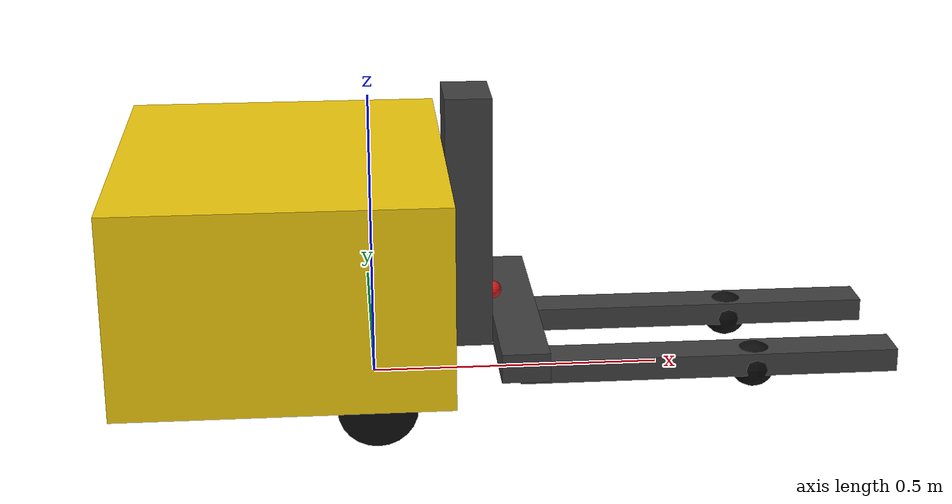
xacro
<?xml version="1.0"?>
<robot xmlns:xacro="http://www.ros.org/wiki/xacro">

    <xacro:include filename="inertial_macros.xacro"/>

    <!-- ── Arka gövde (counterweight) ── -->
    <xacro:property name="body_length" value="0.55"/>
    <xacro:property name="body_width"  value="0.66"/>
    <xacro:property name="body_height" value="0.34"/>
    <xacro:property name="body_mass"   value="15.0"/>

    <!-- ── Mast (dikey taşıma direği) ── -->
    <xacro:property name="mast_depth"  value="0.08"/>
    <xacro:property name="mast_width"  value="0.12"/>
    <xacro:property name="mast_height" value="0.44"/>
    <xacro:property name="mast_mass"   value="2.0"/>

    <!-- ── Fork taşıyıcı (carriage, mast üzerinde kayar) ── -->
    <xacro:property name="carriage_depth"  value="0.08"/>
    <xacro:property name="carriage_width"  value="0.48"/>
    <xacro:property name="carriage_height" value="0.05"/>
    <xacro:property name="carriage_mass"   value="1.5"/>

    <!-- ── Fork tine'ları (iki adet yatay maşa) ── -->
    <xacro:property name="fork_length"   value="0.65"/>
    <xacro:property name="fork_width"    value="0.07"/>
    <xacro:property name="fork_height"   value="0.04"/>
    <xacro:property name="fork_y_offset" value="0.12"/>
    <xacro:property name="fork_mass"     value="0.8"/>

    <!-- ── Arka sürüş tekerlekleri ── -->
    <xacro:property name="wheel_radius"    value="0.065"/>
    <xacro:property name="wheel_thickness" value="0.065"/>
    <xacro:property name="wheel_mass"      value="1.5"/>
    <xacro:property name="wheel_y_offset"  value="0.28"/>

    <!-- ── Ön yük tekerlekleri (fork altında, döner) ── -->
    <xacro:property name="caster_radius"    value="0.04"/>
    <xacro:property name="caster_mass"      value="0.3"/>
    <xacro:property name="caster_x_fwd"     value="0.65"/>
    <xacro:property name="caster_y_offset"  value="0.12"/>

    <xacro:property name="chassis_x_offset" value="-0.15"/>

    <!-- Renkler -->
    <material name="forklift_yellow"><color rgba="0.95 0.80 0.05 1"/></material>
    <material name="dark_gray">      <color rgba="0.25 0.25 0.25 1"/></material>
    <material name="black">          <color rgba="0.05 0.05 0.05 1"/></material>
    <material name="white">          <color rgba="0.92 0.92 0.92 1"/></material>
    <material name="red">            <color rgba="0.85 0.10 0.10 1"/></material>
    <material name="blue">           <color rgba="0.15 0.25 0.85 1"/></material>

    <!-- ================================================================
         BASE LINK  –  zemin, arka tekerlek aksı merkezi
    ================================================================ -->
    <link name="base_link"/>

    <joint name="base_footprint_joint" type="fixed">
        <parent link="base_link"/>
        <child  link="base_footprint"/>
        <origin xyz="0 0 0" rpy="0 0 0"/>
    </joint>
    <link name="base_footprint"/>

    <joint name="chassis_joint" type="fixed">
        <parent link="base_link"/>
        <child  link="chassis"/>
        <!-- x: gövde arka tekerlek aksına göre hafif öne kayık → CoM ±0 seviyesinde tutulur
             z: wheel_radius + body_height/2 → gövde alt yüzü zemin üstünde (tekerlek üstünde) -->
        <origin xyz="${chassis_x_offset} 0 ${wheel_radius + body_height/2}" rpy="0 0 0"/>
    </joint>
    <link name="chassis">
        <visual>
            <geometry>
                <box size="${body_length} ${body_width} ${body_height}"/>
            </geometry>
            <material name="forklift_yellow"/>
        </visual>
        <collision>
            <geometry>
                <box size="${body_length} ${body_width} ${body_height}"/>
            </geometry>
        </collision>
        <xacro:inertial_box mass="${body_mass}"
                            x="${body_length}" y="${body_width}" z="${body_height}">
            <origin xyz="0 0 0" rpy="0 0 0"/>
        </xacro:inertial_box>
    </link>
    <gazebo reference="chassis"><material>Gazebo/Yellow</material></gazebo>

    <joint name="mast_joint" type="fixed">
        <parent link="chassis"/>
        <child  link="mast"/>
        <origin xyz="${body_length/2 + mast_depth/2} 0 ${mast_height/2 - body_height/2}"
                rpy="0 0 0"/>
    </joint>
    <link name="mast">
        <visual>
            <geometry>
                <box size="${mast_depth} ${mast_width} ${mast_height}"/>
            </geometry>
            <material name="dark_gray"/>
        </visual>
        <collision>
            <geometry>
                <box size="${mast_depth} ${mast_width} ${mast_height}"/>
            </geometry>
        </collision>
        <xacro:inertial_box mass="${mast_mass}"
                            x="${mast_depth}" y="${mast_width}" z="${mast_height}">
            <origin xyz="0 0 0" rpy="0 0 0"/>
        </xacro:inertial_box>
    </link>
    <gazebo reference="mast"><material>Gazebo/DarkGray</material></gazebo>

    <joint name="fork_carriage_joint" type="prismatic">
        <parent link="mast"/>
        <child  link="fork_carriage"/>
        <origin xyz="${mast_depth/2 + carriage_depth/2}
                     0
                     ${-mast_height/2 + carriage_height/2 + 0.005}"
                rpy="0 0 0"/>
        <axis xyz="0 0 1"/>
        <limit lower="0.0" upper="0.30" effort="500" velocity="0.3"/>
        <!-- friction=0 (Gazebo ODE friction güvenilmez); kontrolcü gravity compensation yapar -->
        <dynamics damping="200.0" friction="0.0"/>
    </joint>
    <link name="fork_carriage">
        <visual>
            <geometry>
                <box size="${carriage_depth} ${carriage_width} ${carriage_height}"/>
            </geometry>
            <material name="dark_gray"/>
        </visual>
        <collision>
            <geometry>
                <box size="${carriage_depth} ${carriage_width} ${carriage_height}"/>
            </geometry>
        </collision>
        <xacro:inertial_box mass="${carriage_mass}"
                            x="${carriage_depth}" y="${carriage_width}" z="${carriage_height}">
            <origin xyz="0 0 0" rpy="0 0 0"/>
        </xacro:inertial_box>
    </link>
    <gazebo reference="fork_carriage"><material>Gazebo/DarkGray</material></gazebo>

    <!-- ================================================================
         FORK TINE'LARI – sol ve sağ maşa
    ================================================================ -->
    <xacro:macro name="fork_tine" params="prefix y_sign">
        <joint name="${prefix}_fork_joint" type="fixed">
            <parent link="fork_carriage"/>
            <child  link="${prefix}_fork"/>
            <origin xyz="${fork_length/2}
                         ${y_sign * fork_y_offset}
                         ${-(carriage_height + fork_height)/2}"
                    rpy="0 0 0"/>
        </joint>
        <link name="${prefix}_fork">
            <visual>
                <geometry>
                    <box size="${fork_length} ${fork_width} ${fork_height}"/>
                </geometry>
                <material name="dark_gray"/>
            </visual>
            <collision>
                <geometry>
                    <box size="${fork_length} ${fork_width} ${fork_height}"/>
                </geometry>
            </collision>
            <xacro:inertial_box mass="${fork_mass}"
                                x="${fork_length}" y="${fork_width}" z="${fork_height}">
                <origin xyz="0 0 0" rpy="0 0 0"/>
            </xacro:inertial_box>
        </link>
        <gazebo reference="${prefix}_fork"><material>Gazebo/DarkGray</material></gazebo>
    </xacro:macro>

    <xacro:fork_tine prefix="left"  y_sign=" 1"/>
    <xacro:fork_tine prefix="right" y_sign="-1"/>

    <joint name="left_wheel_joint" type="continuous">
        <parent link="base_link"/>
        <child  link="left_wheel"/>
        <origin xyz="0 ${wheel_y_offset} ${wheel_radius}" rpy="${-pi/2} 0 0"/>
        <axis xyz="0 0 1"/>
    </joint>
    <link name="left_wheel">
        <visual>
            <geometry>
                <cylinder radius="${wheel_radius}" length="${wheel_thickness}"/>
            </geometry>
            <material name="black"/>
        </visual>
        <collision>
            <geometry>
                <sphere radius="${wheel_radius}"/>
            </geometry>
        </collision>
        <xacro:inertial_cylinder mass="${wheel_mass}"
                                 length="${wheel_thickness}" radius="${wheel_radius}">
            <origin xyz="0 0 0" rpy="0 0 0"/>
        </xacro:inertial_cylinder>
    </link>
    <gazebo reference="left_wheel"><material>Gazebo/Black</material></gazebo>

    <joint name="right_wheel_joint" type="continuous">
        <parent link="base_link"/>
        <child  link="right_wheel"/>
        <origin xyz="0 ${-wheel_y_offset} ${wheel_radius}" rpy="${pi/2} 0 0"/>
        <axis xyz="0 0 -1"/>
    </joint>
    <link name="right_wheel">
        <visual>
            <geometry>
                <cylinder radius="${wheel_radius}" length="${wheel_thickness}"/>
            </geometry>
            <material name="black"/>
        </visual>
        <collision>
            <geometry>
                <sphere radius="${wheel_radius}"/>
            </geometry>
        </collision>
        <xacro:inertial_cylinder mass="${wheel_mass}"
                                 length="${wheel_thickness}" radius="${wheel_radius}">
            <origin xyz="0 0 0" rpy="0 0 0"/>
        </xacro:inertial_cylinder>
    </link>
    <gazebo reference="right_wheel"><material>Gazebo/Black</material></gazebo>

    <!-- ================================================================
         ÖN YÜK TEKERLEKLERİ – fork altında, döner (castor)
    ================================================================ -->
    <xacro:macro name="load_wheel" params="prefix y_sign">
        <joint name="${prefix}_load_wheel_joint" type="fixed">
            <parent link="base_link"/>
            <child  link="${prefix}_load_wheel"/>
            <origin xyz="${caster_x_fwd} ${y_sign * caster_y_offset} ${caster_radius}"
                    rpy="0 0 0"/>
        </joint>
        <link name="${prefix}_load_wheel">
            <visual>
                <geometry><sphere radius="${caster_radius}"/></geometry>
                <material name="black"/>
            </visual>
            <collision>
                <geometry><sphere radius="${caster_radius}"/></geometry>
            </collision>
            <xacro:inertial_sphere mass="${caster_mass}" radius="${caster_radius}">
                <origin xyz="0 0 0" rpy="0 0 0"/>
            </xacro:inertial_sphere>
        </link>
        <gazebo reference="${prefix}_load_wheel">
            <material>Gazebo/Black</material>
            <mu1 value="0.001"/>
            <mu2 value="0.001"/>
        </gazebo>
    </xacro:macro>

    <xacro:load_wheel prefix="front_left"  y_sign=" 1"/>
    <xacro:load_wheel prefix="front_right" y_sign="-1"/>

    <joint name="front_led_joint" type="fixed">
        <parent link="mast"/>
        <child  link="front_led"/>
        <origin xyz="${mast_depth/2 + 0.005} 0 ${-mast_height/2 + 0.08}" rpy="0 0 0"/>
    </joint>
    <link name="front_led">
        <visual>
            <geometry><sphere radius="0.015"/></geometry>
            <material name="red"/>
        </visual>
    </link>
    <gazebo reference="front_led"><material>Gazebo/RedGlow</material></gazebo>

    <joint name="rear_caster_joint" type="fixed">
        <parent link="chassis"/>
        <child  link="rear_caster"/>
        <!-- chassis frame'de: gövdenin tam arka-alt köşesi -->
        <origin xyz="${-body_length/2 + caster_radius} 0 ${-body_height/2 + caster_radius - wheel_radius}"
                rpy="0 0 0"/>
    </joint>
    <link name="rear_caster">
        <visual>
            <geometry><sphere radius="${caster_radius}"/></geometry>
            <material name="black"/>
        </visual>
        <collision>
            <geometry><sphere radius="${caster_radius}"/></geometry>
        </collision>
        <xacro:inertial_sphere mass="${caster_mass}" radius="${caster_radius}">
            <origin xyz="0 0 0" rpy="0 0 0"/>
        </xacro:inertial_sphere>
    </link>
    <gazebo reference="rear_caster">
        <material>Gazebo/Black</material>
        <mu1 value="0.001"/>
        <mu2 value="0.001"/>
    </gazebo>

    <joint name="rear_led_joint" type="fixed">
        <parent link="chassis"/>
        <child  link="rear_led"/>
        <origin xyz="${-body_length/2 + 0.005} 0 ${body_height/4}" rpy="0 0 0"/>
    </joint>
    <link name="rear_led">
        <visual>
            <geometry><sphere radius="0.015"/></geometry>
            <material name="blue"/>
        </visual>
    </link>
    <gazebo reference="rear_led"><material>Gazebo/BlueGlow</material></gazebo>

</robot>
